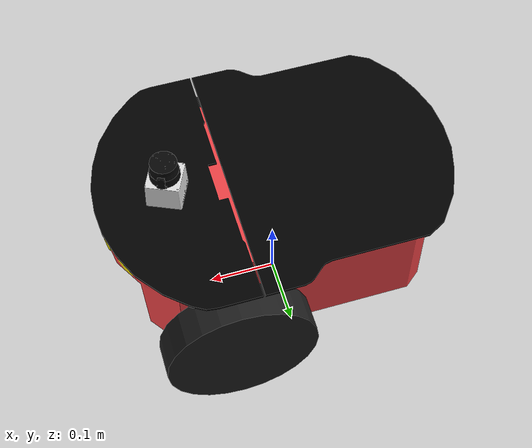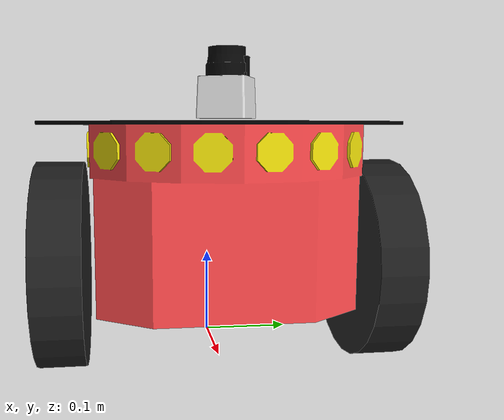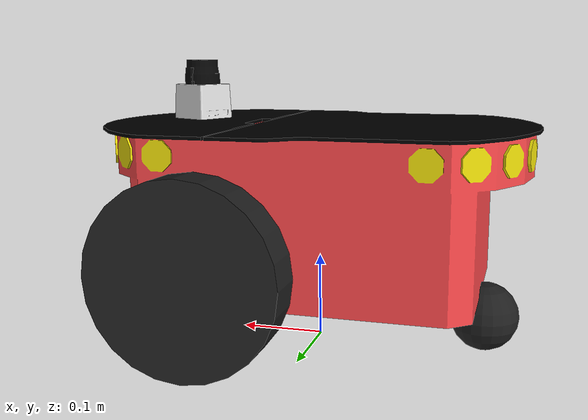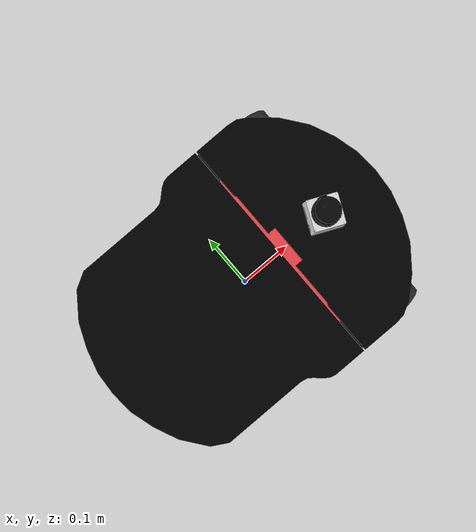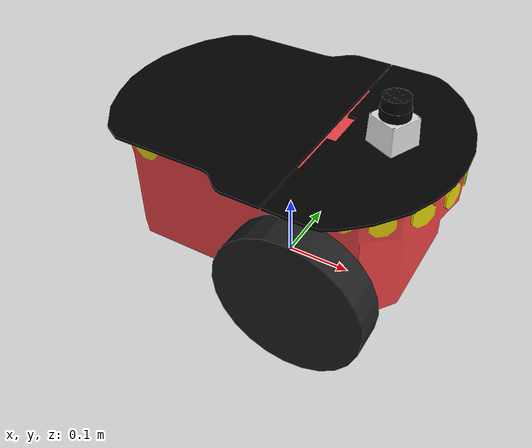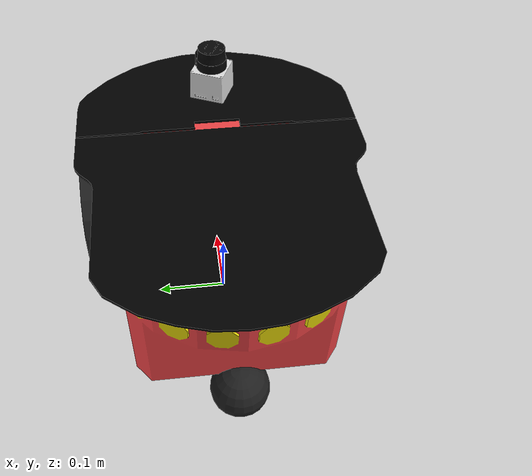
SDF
<?xml version="1.0" ?>
<sdf version="1.5">
  <model name="p2dx">
  <static>false</static>

    <!-- ****************** ROBOT BASE FOOTPRINT ***************************  -->
  <pose>0.0 0.0 0.0 0.0 0.0 0.0</pose>
  <link name="base_footprint"/>

    <!-- ******************** ROBOT BASE ************************************ -->
    <link name="base_link">
      <pose>0 0 0.16 0 0 0</pose>
      <inertial>
        <mass>5.67</mass>
        <inertia>
          <ixx>0.07</ixx>
          <iyy>0.08</iyy>
          <izz>0.10</izz>
          <ixy>0</ixy>
          <ixz>0</ixz>
          <iyz>0</iyz>
        </inertia>
      </inertial>
      <collision name="collision">
        <geometry>
          <box>
            <size>0.445 0.277 0.17</size>
          </box>
        </geometry>
      </collision>
      <collision name="castor_collision">
        <pose>-0.200 0 -0.12 0 0 0</pose>
        <geometry>
          <sphere>
            <radius>0.04</radius>
          </sphere>
        </geometry>
        <surface>
          <friction>
            <ode>
              <mu>0</mu>
              <mu2>0</mu2>
              <slip1>1.0</slip1>
              <slip2>1.0</slip2>
            </ode>
          </friction>
        </surface>
      </collision>
      <visual name="visual">
        <pose>0 0 0.04 0 0 0</pose>
        <geometry>
          <mesh>
            <uri>model://pioneer2dx/meshes/chassis.dae</uri>
          </mesh>
        </geometry>
      </visual>
      <visual name="castor_visual">
        <pose>-0.200 0 -0.12 0 0 0</pose>
        <geometry>
          <sphere>
            <radius>0.04</radius>
          </sphere>
        </geometry>
        <material>
          <script>
            <uri>file://media/materials/scripts/gazebo.material</uri>
            <name>Gazebo/FlatBlack</name>
          </script>
        </material>
      </visual>
    </link>
    <link name="right_wheel">
      <pose>0.1 -.17 0.11 0 1.5707 1.5707</pose>
      <inertial>
        <mass>1.5</mass>
        <inertia>
          <ixx>0.0051</ixx>
          <iyy>0.0051</iyy>
          <izz>0.0090</izz>
          <ixy>0</ixy>
          <ixz>0</ixz>
          <iyz>0</iyz>
        </inertia>
      </inertial>
      <collision name="collision">
        <geometry>
          <cylinder>
            <radius>0.11</radius>
            <length>0.05</length>
          </cylinder>
        </geometry>
        <surface>
          <friction>
            <ode>
              <mu>100000.0</mu>
              <mu2>100000.0</mu2>
              <slip1>0.0</slip1>
              <slip2>0.0</slip2>
            </ode>
          </friction>
        </surface>
      </collision>
      <visual name="visual">
        <geometry>
          <cylinder>
            <radius>0.11</radius>
            <length>0.05</length>
          </cylinder>
        </geometry>
        <material>
          <script>
            <uri>file://media/materials/scripts/gazebo.material</uri>
            <name>Gazebo/FlatBlack</name>
          </script>
        </material>
      </visual>
    </link>
    <link name="left_wheel">
      <pose>0.1 .17 0.11 0 1.5707 1.5707</pose>
      <inertial>
        <mass>1.5</mass>
        <inertia>
          <ixx>0.0051</ixx>
          <iyy>0.0051</iyy>
          <izz>0.0090</izz>
          <ixy>0</ixy>
          <ixz>0</ixz>
          <iyz>0</iyz>
        </inertia>
      </inertial>
      <collision name="collision">
        <geometry>
          <cylinder>
            <radius>0.11</radius>
            <length>0.05</length>
          </cylinder>
        </geometry>
        <surface>
          <friction>
            <ode>
              <mu>100000.0</mu>
              <mu2>100000.0</mu2>
              <slip1>0.0</slip1>
              <slip2>0.0</slip2>
            </ode>
          </friction>
        </surface>
      </collision>
      <visual name="visual">
        <geometry>
          <cylinder>
            <radius>0.11</radius>
            <length>0.05</length>
          </cylinder>
        </geometry>
        <material>
          <script>
            <uri>file://media/materials/scripts/gazebo.material</uri>
            <name>Gazebo/FlatBlack</name>
          </script>
        </material>
      </visual>
    </link>
    <joint type="revolute" name="left_wheel_hinge">
      <pose>0 0 -0.03 0 0 0</pose>
      <child>left_wheel</child>
      <parent>base_link</parent>
      <axis>
        <xyz>0 1 0</xyz>
        <use_parent_model_frame>true</use_parent_model_frame>
      </axis>
    </joint>
    <joint type="revolute" name="right_wheel_hinge">
      <pose>0 0 0.03 0 0 0</pose>
      <child>right_wheel</child>
      <parent>base_link</parent>
      <axis>
        <xyz>0 1 0</xyz>
        <use_parent_model_frame>true</use_parent_model_frame>
      </axis>
    </joint>

    <!-- ******************* PLUGINS **************************** -->

    <!-- *** odometry *** -->
   <!-- Controls the differential drive robot -->
       <plugin name='diff_drive' filename='libgazebo_ros_diff_drive.so'>
         <ros>
           <namespace>/demo</namespace>
           <remapping>cmd_vel:=cmd_vel</remapping>
           <remapping>odom:=odom</remapping>
         </ros>

         <!-- wheels -->
         <left_joint>left_wheel_hinge</left_joint>
         <right_joint>right_wheel_hinge</right_joint>

         <!-- kinematics -->
         <wheel_separation>0.26</wheel_separation>
         <wheel_diameter>0.2</wheel_diameter>

         <!-- limits -->
         <max_wheel_torque>20</max_wheel_torque>
         <max_wheel_acceleration>1.0</max_wheel_acceleration>

         <!-- output -->
         <publish_odom>true</publish_odom>
         <publish_odom_tf>true</publish_odom_tf>
         <publish_wheel_tf>true</publish_wheel_tf>

         <odometry_frame>odom</odometry_frame>
         <robot_base_frame>base_footprint</robot_base_frame>
         <odometry_source>0</odometry_source>
       </plugin>

    <!-- *** IMU *** -->
    <link name = "imu">

    	<gravity>true</gravity>
    	<sensor name="imu_sensor" type="imu">
      		<always_on>true</always_on>
      		<update_rate>100</update_rate>
      		<visualize>true</visualize>
      		<topic>imu</topic>
      	<plugin filename="libgazebo_ros_imu_sensor.so" name="imu_plugin">
        	<initial_orientation_as_reference>false</initial_orientation_as_reference>
        	<ros>
        	 <namespace>/imu</namespace>
          	 <remapping>~/out:=data</remapping>
        	</ros>
        <bodyName>imu_link</bodyName>
        <updateRateHZ>10.0</updateRateHZ>
        <gaussianNoise>0.0</gaussianNoise>
        <xyzOffset>0 0 0</xyzOffset>
        <rpyOffset>0 0 0</rpyOffset>
        <output_type>sensor_msgs/Imu</output_type>
        <frame_name>imu_link</frame_name>
      </plugin>
    </sensor>
    </link>

    <!-- *** LIDAR *** -->
    <link name="lidar">
      <pose>0.15 0 0.3 0 0 -2</pose>

      <sensor name="rplidar" type="ray">
        <always_on>true</always_on>
        <update_rate>30</update_rate>
        <visualize>true</visualize>
        <topic>scan</topic>
        <ray>
          <scan>
            <horizontal>
              <samples>360</samples>
              <resolution>1</resolution>
              <min_angle>0</min_angle>
              <max_angle>4.19</max_angle>
            </horizontal>
          </scan>
          <range>
            <min>0.1</min>
            <max>5.6</max>
            <resolution>0.2</resolution>
          </range>
        </ray>
        <plugin name="laser" filename="libgazebo_ros_ray_sensor.so">
          <ros>
            <argument>~/out:=scan</argument>
          </ros>
          <output_type>sensor_msgs/LaserScan</output_type>
          <frame_name>laser</frame_name>
        </plugin>
      </sensor>
      <visual name="visual">
        <geometry>
          <mesh>
            <uri>model://hokuyo/meshes/hokuyo.dae</uri>
          </mesh>
        </geometry>
      </visual>
</link>

       <!-- ****************************** JOINTS ****************************************** -->
       <joint name="base_joint" type="fixed">
    	 <parent>base_footprint</parent>
    	 <child>base_link</child>
    	 <pose>0 0 0 0 0 0</pose>
       </joint>

       <joint type="fixed" name="laser_joint">
         <child>lidar</child>
         <parent>base_link</parent>
       </joint>

       <joint type="fixed" name="imu_joint">
      		<child>imu</child>
      		<parent>base_link</parent>
       </joint>

  </model>
</sdf>
